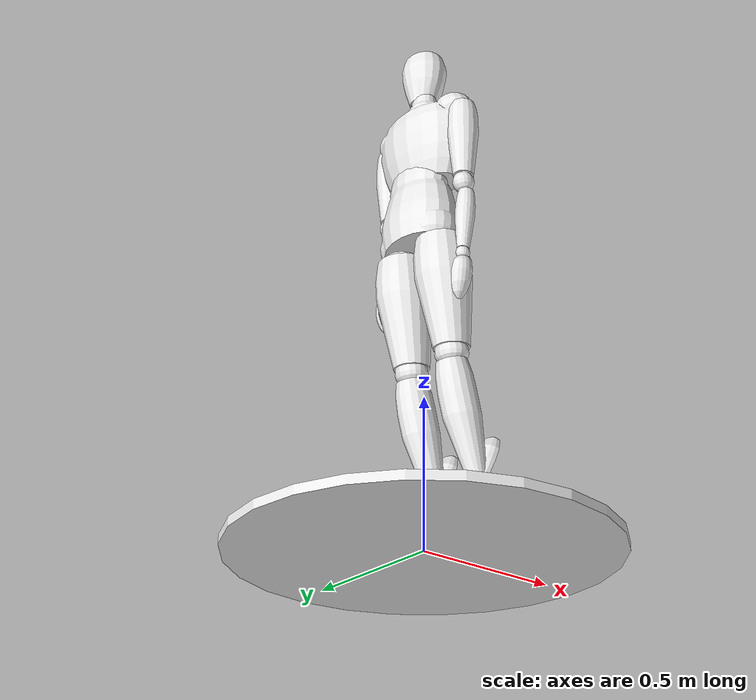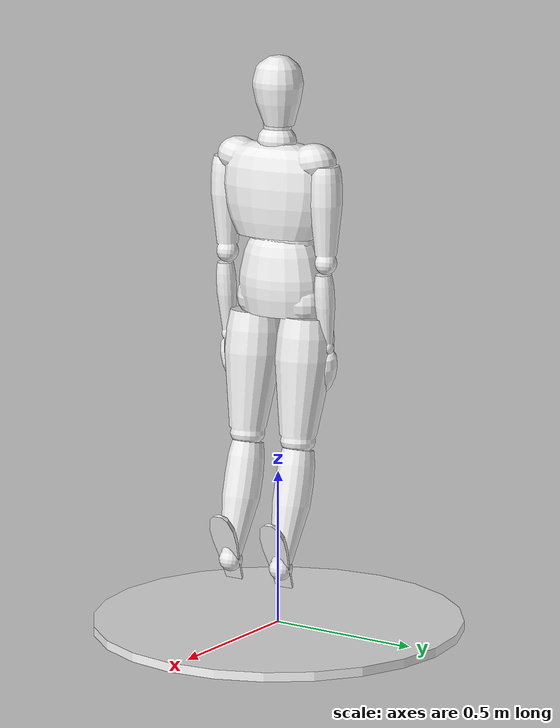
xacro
<?xml version="1.0"?>
<robot xmlns:xacro="http://www.ros.org/wiki/xacro" name="mannequin">

	<!-- Body and weight measurements come from "Kodak's Ergonomic Design for People at Work" 50th percentile woman -->

    <!-- Puts mannequin in Gazebo sim -->
    <gazebo>
        <plugin name="gazebo_ros_control" filename="libgazebo_ros_control.so">
            <robotNamespace>/mannequin</robotNamespace>
        </plugin>
    </gazebo>

    <xacro:property name="joint_effort" value="200"/>
    <xacro:property name="joint_velocity" value="0.5"/>

    <!-- * * * Link Definitions * * * -->
    <link name="base_link"> <!-- Base link allows the body to "float"-->
        <visual>
            <origin rpy="0 0 0" xyz="0 0 0"/>
            <geometry>
                <cylinder radius="0.6" length="0.03"/>
            </geometry>
        </visual>
        <collision>
            <origin xyz="0 0 0" rpy="0 0 0"/>
            <geometry>
                <cylinder radius="0.6" length="0.03"/>
            </geometry>
        </collision>
	</link>
    <gazebo reference="base_link">
        <kp>50000.0</kp>
        <kd>50000.0</kd>
        <mu1>10.0</mu1>
        <mu2>10.0</mu2>
        <material>Gazebo/White</material>
    </gazebo>

    <link name="lower_body_link">
    	<visual>
            <origin rpy="0.0 0 0" xyz="0 0 0"/>
            <geometry>
                <!-- Material color set to white in blender -->
                <mesh filename="package://mannequin/models/mannequin/meshes/lower_body_formatted.dae"/>
            </geometry>
        </visual>
        <collision>
            <origin xyz="0 0 0" rpy="0 0 0"/>
            <geometry>
                <mesh filename="package://mannequin/models/mannequin/meshes/lower_body_low_poly.dae"/>
            </geometry>
        </collision>
        <inertial>
            <origin xyz="0 0 0.145" rpy="-0.01 0 0"/>
            <mass value="15.3" />
            <inertia ixx="0.2913375" ixy="0.0" ixz="0.0" iyy="0.162920775" iyz="0.0" izz="0.239803275"/>
        </inertial>
	</link>
    <gazebo reference="lower_body_link">
        <kp>5000.0</kp>
        <kd>5000.0</kd>
        <mu1>10.0</mu1>
        <mu2>10.0</mu2>
        <material>Gazebo/White</material>
    </gazebo>

	<link name="upper_body_link">
    	<visual>
            <origin rpy="0.01 0 0" xyz="0 -0.005 0"/>
            <geometry>
                <!-- Material color set to white in blender -->
                <mesh filename="package://mannequin/models/mannequin/meshes/upper_body_formatted.dae"/>
            </geometry>
        </visual>
        <collision>
            <origin xyz="0 0 0" rpy="0 0 0"/>
            <geometry>
                <mesh filename="package://mannequin/models/mannequin/meshes/upper_body_low_poly.dae"/>
            </geometry>
        </collision>
        <inertial>
            <origin xyz="0 0 0.145" rpy="0 0 0"/>
            <mass value="15.3" />
            <inertia ixx="0.2913375" ixy="0.0" ixz="0.0" iyy="0.162920775" iyz="0.0" izz="0.239803275"/>
        </inertial>
	</link>
    <gazebo reference="upper_body_link">
        <kp>10000.0</kp>
        <kd>10000.0</kd>
        <mu1>10.0</mu1>
        <mu2>10.0</mu2>
        <material>Gazebo/White</material>
    </gazebo>

    <link name="head_link">
    	<visual>
            <origin rpy="0.0 0 0" xyz="0 0 0"/>
            <geometry>
                <!-- Material color set to white in blender -->
                <mesh filename="package://mannequin/models/mannequin/meshes/head_formatted.dae"/>
            </geometry>
        </visual>
        <collision>
            <origin xyz="0 0 0.073" rpy="0 0 0"/>
            <geometry>
                <sphere radius="0.073"/>
            </geometry>
        </collision>
        <inertial>
            <origin xyz="0 0 0.073" rpy="0 0 0"/>
            <mass value="4.7" />
            <inertia ixx="0.01001852" ixy="0.0" ixz="0.0" iyy="0.01001852" iyz="0.0" izz="0.01001852"/>
        </inertial>
	</link>
    <gazebo reference="head_link">
        <kp>10000.0</kp>
        <kd>10000.0</kd>
        <mu1>10.0</mu1>
        <mu2>10.0</mu2>
        <material>Gazebo/White</material>
    </gazebo>

    <!-- Torso Joint definitions -->
    <joint name="base_joint" type="fixed">
    	<parent link="base_link"/>
        <child link="lower_body_link"/>
        <origin xyz="0 0 1" rpy="0 0 0"/>
    </joint>
    <joint name="torso_mid_joint" type="revolute">
	    <hardwareInterface>hardware_interface/EffortJointInterface</hardwareInterface>
        <parent link="lower_body_link"/>
        <child link="upper_body_link"/>
        <axis xyz="1 0 0"/> <!-- As is, the mannequin torso can only bend side to side, as this is what I have ROM data on-->
        <limit lower="-0.611" upper="0.611" effort="1000" velocity="${joint_velocity}"/>
        <origin xyz="0 0 0.265" rpy="0 0 0"/>
    </joint>
    <joint name="neck_joint" type="revolute">
	    <hardwareInterface>hardware_interface/EffortJointInterface</hardwareInterface>
        <parent link="upper_body_link"/>
        <child link="head_link"/>
        <axis xyz="1 0 0"/> <!-- As is, the mannequin head can only tilt left/right to simplify the joint-->
        <limit lower="-0.785" upper="0.785" effort="${joint_effort}" velocity="${joint_velocity}"/>
        <origin xyz="0 0.0 0.358" rpy="0 0 0"/>
    </joint>
    <transmission name="torsotran">
	    <type>transmission_interface/SimpleTransmission</type>
		<joint name="torso_mid_joint">
	        <hardwareInterface>hardware_interface/EffortJointInterface</hardwareInterface>
	    </joint>
		<actuator name="torsomotor">
	        <mechanicalReduction>50</mechanicalReduction>
	    </actuator>
	</transmission>
	<transmission name="necktran">
	    <type>transmission_interface/SimpleTransmission</type>
		<joint name="neck_joint">
	        <hardwareInterface>hardware_interface/EffortJointInterface</hardwareInterface>
	    </joint>
		<actuator name="headmotor">
	        <mechanicalReduction>50</mechanicalReduction>
	    </actuator>
	</transmission>

    <!-- Macro and variables for creating the arms -->
    <xacro:property name="pseudo_radius" value="0.01"/>
    <xacro:property name="pseudo_mass" value="0.01"/>
    <xacro:property name="pseudo_I" value="4e-07"/>
    <xacro:property name="arm_vertical_offset" value="0.24"/>
    <xacro:property name="upper_arm_horizontal_offset" value="0.188"/>
    <xacro:property name="lower_arm_horizontal_offset" value="0.34"/>
    <xacro:macro name="arm" params="side reflection">

    	<!-- Shoulder and upper arm definitions-->
    	<!-- "invisible" links that add DOF to the shoulder -->
    	<link name="${side}_shoulder_roll_link">
    		<visual>
		        <origin rpy="0 0 0" xyz="0 0 0"/>
		        <geometry>
		            <sphere radius="${pseudo_radius}"/>
		        </geometry>
		    </visual>
		    <inertial>
		        <origin xyz="0 0 0" rpy="0 0 0"/>
		        <mass value="${pseudo_mass}" />
		        <inertia ixx="${pseudo_I}" ixy="0.0" ixz="0.0" iyy="${pseudo_I}" iyz="0.0" izz="${pseudo_I}"/>
		    </inertial>

    	</link>
    	<gazebo reference="${side}_shoulder_roll_link">
		    <kp>10000.0</kp>
		    <kd>10000.0</kd>
		    <mu1>10.0</mu1>
		    <mu2>10.0</mu2>
		    <material>Gazebo/Red</material>
		</gazebo>
    	<link name="${side}_shoulder_pitch_link">
    		<visual>
		        <origin rpy="0 0 0" xyz="0 0 0"/>
		        <geometry>
		            <sphere radius="${pseudo_radius}"/>
		        </geometry>
		    </visual>
		    <inertial>
		        <origin xyz="0 0 0" rpy="0 0 0"/>
		        <mass value="${pseudo_mass}" />
		        <inertia ixx="${pseudo_I}" ixy="0.0" ixz="0.0" iyy="${pseudo_I}" iyz="0.0" izz="${pseudo_I}"/>
		    </inertial>

    	</link>
    	<gazebo reference="${side}_shoulder_pitch_link">
		    <kp>10000.0</kp>
		    <kd>10000.0</kd>
		    <mu1>10.0</mu1>
		    <mu2>10.0</mu2>
		    <material>Gazebo/Green</material>
		</gazebo>
    	<link name="${side}_shoulder_yaw_link">
    		<visual>
		        <origin rpy="0 0 0" xyz="0 0 0"/>
		        <geometry>
		            <sphere radius="${pseudo_radius}"/>
		        </geometry>
		    </visual>
		    <inertial>
		        <origin xyz="0 0 0" rpy="0 0 0"/>
		        <mass value="${pseudo_mass}" />
		        <inertia ixx="${pseudo_I}" ixy="0.0" ixz="0.0" iyy="${pseudo_I}" iyz="0.0" izz="${pseudo_I}"/>
		    </inertial>

    	</link>
    	<gazebo reference="${side}_shoulder_yaw_link">
		    <kp>10000.0</kp>
		    <kd>10000.0</kd>
		    <mu1>10.0</mu1>
		    <mu2>10.0</mu2>
		    <material>Gazebo/Blue</material>
		</gazebo>
		<link name="${side}_upper_arm_link">
			<visual>
		        <origin rpy="0.0 0 0" xyz="0 0 0"/>
		        <geometry>
		            <!-- Material color set to white in blender -->
		            <mesh filename="package://mannequin/models/mannequin/meshes/upper_arm_formatted.dae"/>
		        </geometry>
		    </visual>
		    <collision>
		        <origin xyz="0 0 -0.170" rpy="0 0 0"/>
		        <geometry>
		            <cylinder radius="0.042" length="0.341"/>
		        </geometry>
		    </collision>
		    <inertial>
		        <origin xyz="0 0 -0.170" rpy="0 0 0"/>
		        <mass value="2.1" />
		        <inertia ixx="0.021275275" ixy="0.0" ixz="0.0" iyy="0.021275275" iyz="0.0" izz="0.0018522"/>
		    </inertial>
		</link>
		<gazebo reference="${side}_upper_arm_link">
		    <kp>5000.0</kp>
		    <kd>5000.0</kd>
		    <mu1>10.0</mu1>
		    <mu2>10.0</mu2>
		    <material>Gazebo/White</material>
		</gazebo>

		<joint name="${side}_shoulder_roll_joint" type="revolute">
	        <hardwareInterface>hardware_interface/EffortJointInterface</hardwareInterface>
		    <parent link="upper_body_link"/>
		    <child link="${side}_shoulder_roll_link"/>
		    <axis xyz="${reflection} 0 0"/>
		    <limit lower="-1.05" upper="3.14" effort="${joint_effort}" velocity="${joint_velocity}"/>
		    <origin xyz="0 ${upper_arm_horizontal_offset * reflection} ${arm_vertical_offset}" rpy="0 0 0"/>
		</joint>
		<joint name="${side}_shoulder_pitch_joint" type="revolute">
	        <hardwareInterface>hardware_interface/EffortJointInterface</hardwareInterface>
		    <parent link="${side}_shoulder_roll_link"/>
		    <child link="${side}_shoulder_pitch_link"/>
		    <axis xyz="0 1 0"/>
		    <limit lower="-1.3" upper="3.14" effort="${joint_effort}" velocity="${joint_velocity}"/>
		    <origin xyz="0 0 0" rpy="0 0 0"/>
		</joint>
		<joint name="${side}_shoulder_yaw_joint" type="revolute">
	        <hardwareInterface>hardware_interface/EffortJointInterface</hardwareInterface>
		    <parent link="${side}_shoulder_pitch_link"/>
		    <child link="${side}_shoulder_yaw_link"/>
		    <axis xyz="0 0 ${-1*reflection}"/>
		    <limit lower="-1.0" upper="1.5" effort="${joint_effort}" velocity="${joint_velocity}"/>
		    <origin xyz="0 0 0" rpy="0 0 0"/>
		</joint>
		<joint name="${side}_upper_arm_joint" type="fixed">
		    <parent link="${side}_shoulder_yaw_link"/>
		    <child link="${side}_upper_arm_link"/>
		    <origin xyz="0 0 0" rpy="0 0 0"/>
		</joint>

		<!-- "Invisible" links for DOF of the elbow (flexion/extension[-0.17,2.62] and supination/pronation[-1.40,1.40]) -->
		<link name="${side}_elbow_flexion_link">
    		<visual>
		        <origin rpy="0 0 0" xyz="0 0 0"/>
		        <geometry>
		            <sphere radius="${pseudo_radius}"/>
		        </geometry>
		    </visual>
		    <inertial>
		        <origin xyz="0 0 0" rpy="0 0 0"/>
		        <mass value="${pseudo_mass}" />
		        <inertia ixx="${pseudo_I}" ixy="0.0" ixz="0.0" iyy="${pseudo_I}" iyz="0.0" izz="${pseudo_I}"/>
		    </inertial>

    	</link>
    	<gazebo reference="${side}_elbow_flexion_link">
		    <kp>1000.0</kp>
		    <kd>1000.0</kd>
		    <mu1>10.0</mu1>
		    <mu2>10.0</mu2>
		    <material>Gazebo/Red</material>
		</gazebo>
		<link name="${side}_lower_arm_link">
			<visual>
		        <origin rpy="0.0 0 0" xyz="0 0 0"/>
		        <geometry>
		            <!-- Material color set to white in blender -->
		            <mesh filename="package://mannequin/models/mannequin/meshes/lower_arm_formatted.dae"/>
		        </geometry>
		    </visual>
		    <collision>
		        <origin xyz="0 0 -0.128" rpy="0 0 0"/>
		        <geometry>
		            <cylinder radius="0.035" length="0.25"/>
		        </geometry>
		    </collision>
		    <inertial>
		        <origin xyz="0 0 -0.128" rpy="0 0 0"/>
		        <mass value="2.1" />
		        <inertia ixx="0.01038165" ixy="0.0" ixz="0.0" iyy="0.01038165" iyz="0.0" izz="0.0011025"/>
		    </inertial>
		</link>
		<gazebo reference="${side}_lower_arm_link">
		    <kp>5000.0</kp>
		    <kd>5000.0</kd>
		    <mu1>10.0</mu1>
		    <mu2>10.0</mu2>
		    <material>Gazebo/White</material>
		</gazebo>
		<joint name="${side}_elbow_flexion_joint" type="revolute">
	        <hardwareInterface>hardware_interface/EffortJointInterface</hardwareInterface>
		    <parent link="${side}_upper_arm_link"/>
		    <child link="${side}_elbow_flexion_link"/>
		    <axis xyz="0 -1 0"/>
		    <limit lower="-1.05" upper="3.14" effort="50" velocity="${joint_velocity}"/>
		    <origin xyz="0 -0.01 ${-1 * lower_arm_horizontal_offset}" rpy="0 0.05 0"/>
		</joint>
		<joint name="${side}_lower_arm_joint" type="fixed">
		    <parent link="${side}_elbow_flexion_link"/>
		    <child link="${side}_lower_arm_link"/>
		</joint>

		<!-- Hand definitions -->
		<!-- Invisible links for flexion/extension and ulnar/radial deviation -->
		<link name="${side}_wrist_flexion_link">
    		<visual>
		        <origin rpy="0 0 0" xyz="0 0 0"/>
		        <geometry>
		            <sphere radius="${pseudo_radius}"/>
		        </geometry>
		    </visual>
		    <inertial>
		        <origin xyz="0 0 0" rpy="0 0 0"/>
		        <mass value="${pseudo_mass}" />
		        <inertia ixx="${pseudo_I}" ixy="0.0" ixz="0.0" iyy="${pseudo_I}" iyz="0.0" izz="${pseudo_I}"/>
		    </inertial>

    	</link>
    	<gazebo reference="${side}_wrist_flexion_link">
		    <kp>1000.0</kp>
		    <kd>1000.0</kd>
		    <mu1>10.0</mu1>
		    <mu2>10.0</mu2>
		    <material>Gazebo/Red</material>
		</gazebo>
		<link name="${side}_hand_link">
			<visual>
		        <origin rpy="0.0 -0.2 3.14" xyz="0 0 0"/>
		        <geometry>
		            <!-- Material color set to white in blender -->
		            <mesh filename="package://mannequin/models/mannequin/meshes/hand_formatted.dae"/>
		        </geometry>
		    </visual>
		    <collision>
		        <origin xyz="0 0 -0.092" rpy="0 0 0"/>
		        <geometry>
		            <box size="0.077 0.028 0.184"/>
		        </geometry>
		    </collision>
		    <inertial>
		        <origin xyz="0 0 -0.092" rpy="0 0 0"/>
		        <mass value="0.5" />
		        <inertia ixx="0.00144333333333" ixy="0.0" ixz="0.0" iyy="0.00165770833333" iyz="0.0" izz="0.000279708333333"/>
		    </inertial>
		</link>
		<gazebo reference="${side}_hand_link">
		    <kp>5000.0</kp>
		    <kd>5000.0</kd>
		    <mu1>10.0</mu1>
		    <mu2>10.0</mu2>
		    <material>Gazebo/White</material>
		</gazebo>
		<joint name="${side}_wrist_flexion_joint" type="revolute">
	        <hardwareInterface>hardware_interface/EffortJointInterface</hardwareInterface>
		    <parent link="${side}_lower_arm_link"/>
		    <child link="${side}_wrist_flexion_link"/>
		    <axis xyz="1 0 0"/>
		    <limit lower="-1.396" upper="1.22" effort="5" velocity="${joint_velocity}"/>
		    <origin xyz="0 0 -0.25" rpy="0 0 0"/>
		</joint>
		<joint name="${side}_hand_joint" type="fixed">
		    <parent link="${side}_wrist_flexion_link"/>
		    <child link="${side}_hand_link"/>
		    <origin xyz="0 0 0" rpy="0 0 ${1.57*reflection}"/>
		</joint>

    	<!-- ***** Actuator Definitions for arm ***** -->
    	<!-- Shoulder actuators -->
    	<transmission name="${side}shoulderrolltran">
		    <type>transmission_interface/SimpleTransmission</type>
		    <joint name="${side}_shoulder_roll_joint">
		        <hardwareInterface>hardware_interface/EffortJointInterface</hardwareInterface>
		    </joint>
		    <actuator name="${side}shoulderrollmotor">
		        <mechanicalReduction>50</mechanicalReduction>
		    </actuator>
		</transmission>
		<transmission name="${side}shoulderpitchtran">
		    <type>transmission_interface/SimpleTransmission</type>
		    <joint name="${side}_shoulder_pitch_joint">
		        <hardwareInterface>hardware_interface/EffortJointInterface</hardwareInterface>
		    </joint>
		    <actuator name="${side}shoulderpitchmotor">
		        <mechanicalReduction>50</mechanicalReduction>
		    </actuator>
		</transmission>
		<transmission name="${side}shoulderyawtran">
		    <type>transmission_interface/SimpleTransmission</type>
		    <joint name="${side}_shoulder_yaw_joint">
		        <hardwareInterface>hardware_interface/EffortJointInterface</hardwareInterface>
		    </joint>
		    <actuator name="${side}shoulderyawmotor">
		        <mechanicalReduction>50</mechanicalReduction>
		    </actuator>
		</transmission>

		<!-- Elbow actuators -->
		<transmission name="${side}elbowflexiontran">
		    <type>transmission_interface/SimpleTransmission</type>
		    <joint name="${side}_elbow_flexion_joint">
		        <hardwareInterface>hardware_interface/EffortJointInterface</hardwareInterface>
		    </joint>
		    <actuator name="${side}elbowflexionmotor">
		        <mechanicalReduction>50</mechanicalReduction>
		    </actuator>
		</transmission>

		<!-- Wrist actuators -->
		<transmission name="${side}wristflexiontran">
		    <type>transmission_interface/SimpleTransmission</type>
		    <joint name="${side}_wrist_flexion_joint">
		        <hardwareInterface>hardware_interface/EffortJointInterface</hardwareInterface>
		    </joint>
		    <actuator name="${side}wristflexionmotor">
		        <mechanicalReduction>50</mechanicalReduction>
		    </actuator>
		</transmission>

    </xacro:macro>

    <xacro:arm side="left" reflection="1"/>
    <xacro:arm side="right" reflection="-1"/>

    <xacro:property name="leg_joint_effort" value="2000"/> <!-- The legs have to support the whole body, so they need high effort cap -->
    <xacro:property name="leg_joint_velocity" value="2.0"/>
    <xacro:macro name="leg" params="side reflection">

    	<link name="${side}_thigh_link">
    		<visual>
		        <origin rpy="0.0 0 0" xyz="0 0 0"/>
		        <geometry>
		            <!-- Material color set to white in blender -->
		            <mesh filename="package://mannequin/models/mannequin/meshes/upper_leg_formatted.dae"/>
		        </geometry>
		    </visual>
		    <collision>
		        <origin xyz="0 0 -0.240" rpy="0 0 0"/>
		        <geometry>
		            <cylinder radius="0.095" length=".475"/>
		        </geometry>
		    </collision>
		    <inertial>
		        <origin xyz="0 0 -0.240" rpy="0 0 0"/>
		        <mass value="7.4" />
		        <inertia ixx="0.15877625" ixy="0.0" ixz="0.0" iyy="0.15877625" iyz="0.0" izz="0.0333925"/>
		    </inertial>
		</link>
		<gazebo reference="${side}_thigh_link">
		    <kp>5000.0</kp>
		    <kd>5000.0</kd>
		    <mu1>10.0</mu1>
		    <mu2>10.0</mu2>
		    <material>Gazebo/White</material>
		</gazebo>
		<link name="${side}_calf_link">
			<visual>
		        <origin rpy="0.0 0 0" xyz="0 0 0"/>
		        <geometry>
		            <!-- Material color set to white in blender -->
		            <mesh filename="package://mannequin/models/mannequin/meshes/lower_leg_formatted.dae"/>
		        </geometry>
		    </visual>
		    <collision>
		        <origin xyz="0 0 -0.217" rpy="0 0 0"/>
		        <geometry>
		            <cylinder radius="0.056" length=".433"/>
		        </geometry>
		    </collision>
		    <inertial>
		        <origin xyz="0 0 -0.217" rpy="0 0 0"/>
		        <mass value="2.9" />
		        <inertia ixx="0.0475834416667" ixy="0.0" ixz="0.0" iyy="0.0475834416667" iyz="0.0" izz="0.0045472"/>
		    </inertial>
		</link>
		<gazebo reference="${side}_calf_link">
		    <kp>5000.0</kp>
		    <kd>5000.0</kd>
		    <mu1>10.0</mu1>
		    <mu2>10.0</mu2>
		    <material>Gazebo/White</material>
		</gazebo>
		<link name="${side}_foot_link">
			<visual>
		        <origin rpy="0.0 0 0" xyz="0 0 0"/>
		        <geometry>
		            <!-- Material color set to white in blender -->
		            <mesh filename="package://mannequin/models/mannequin/meshes/foot_formatted.dae"/>
		        </geometry>
		    </visual>
		    <collision>
		        <origin xyz="0.1205 0.0445 -0.014" rpy="0 0 0"/>
		        <geometry>
		            <box size="0.241 0.089 0.028"/>
		        </geometry>
		    </collision>
		    <inertial>
		        <origin xyz="0.1205 0.0445 -0.014" rpy="0 0 0"/>
		        <mass value="1.2" /> <!--Iw = 0.0058865, Id = 0.0066002, Ih = 0.0008705-->
		        <inertia ixx="0.0008705" ixy="0.0" ixz="0.0" iyy="0.0058865" iyz="0.0" izz="0.0066002"/>
		    </inertial>
		</link>
		<gazebo reference="${side}_foot_link">
		    <kp>5000.0</kp>
		    <kd>5000.0</kd>
		    <mu1>10.0</mu1>
		    <mu2>10.0</mu2>
		    <material>Gazebo/White</material>
		</gazebo>

		<joint name="${side}_thigh_joint" type="revolute">
	        <hardwareInterface>hardware_interface/EffortJointInterface</hardwareInterface>
		    <parent link="lower_body_link"/>
		    <child link="${side}_thigh_link"/>
		    <axis xyz="0 1 0"/>
		    <!-- Kodak's does not have data on thigh ROM, I estimated here -->
		    <limit lower="-1.3" upper="1.57" effort="${leg_joint_effort}" velocity="${leg_joint_velocity}"/>
		    <origin xyz="-0.015 ${reflection*0.097} 0.025" rpy="0 -0.1 0"/>
		</joint>

		<joint name="${side}_knee_joint" type="revolute">
	        <hardwareInterface>hardware_interface/EffortJointInterface</hardwareInterface>
		    <parent link="${side}_thigh_link"/>
		    <child link="${side}_calf_link"/>
		    <axis xyz="0 1 0"/>
		    <limit lower="-0.17" upper="2.36" effort="${leg_joint_effort}" velocity="${leg_joint_velocity}"/>
		    <origin xyz="0 0 -0.433" rpy="0 -0.1 0"/>
		</joint>

		<joint name="${side}_ankle_joint" type="revolute">
	        <hardwareInterface>hardware_interface/EffortJointInterface</hardwareInterface>
		    <parent link="${side}_calf_link"/>
		    <child link="${side}_foot_link"/>
		    <axis xyz="0 1 0"/>
		    <!-- Kodak's does not have data on thigh ROM, I estimated here -->
		    <limit lower="-0.35" upper="0.87" effort="${leg_joint_effort}" velocity="${leg_joint_velocity}"/>
		    <origin xyz="0 0 -0.433" rpy="0 -1.0 0"/>
		</joint>

		<transmission name="${side}hiprolltran">
		    <type>transmission_interface/SimpleTransmission</type>
		    <joint name="${side}_thigh_joint">
		        <hardwareInterface>hardware_interface/EffortJointInterface</hardwareInterface>
		    </joint>
		    <actuator name="${side}hiprollmotor">
		        <mechanicalReduction>50</mechanicalReduction>
		    </actuator>
		</transmission>
		<transmission name="${side}kneerolltran">
		    <type>transmission_interface/SimpleTransmission</type>
		    <joint name="${side}_knee_joint">
		        <hardwareInterface>hardware_interface/EffortJointInterface</hardwareInterface>
		    </joint>
		    <actuator name="${side}kneerollmotor">
		        <mechanicalReduction>50</mechanicalReduction>
		    </actuator>
		</transmission>
		<transmission name="${side}anklerolltran">
		    <type>transmission_interface/SimpleTransmission</type>
		    <joint name="${side}_ankle_joint">
		        <hardwareInterface>hardware_interface/EffortJointInterface</hardwareInterface>
		    </joint>
		    <actuator name="${side}anklerollmotor">
		        <mechanicalReduction>50</mechanicalReduction>
		    </actuator>
		</transmission>

    </xacro:macro>

    <xacro:leg side="right" reflection="1"/>
    <xacro:leg side="left" reflection="-1"/>

</robot>
